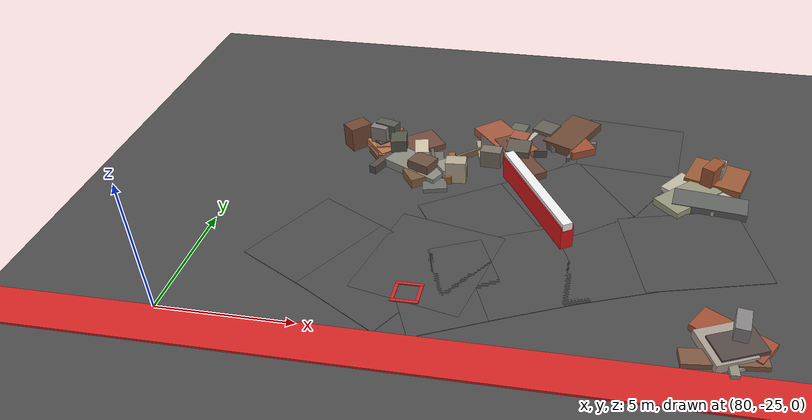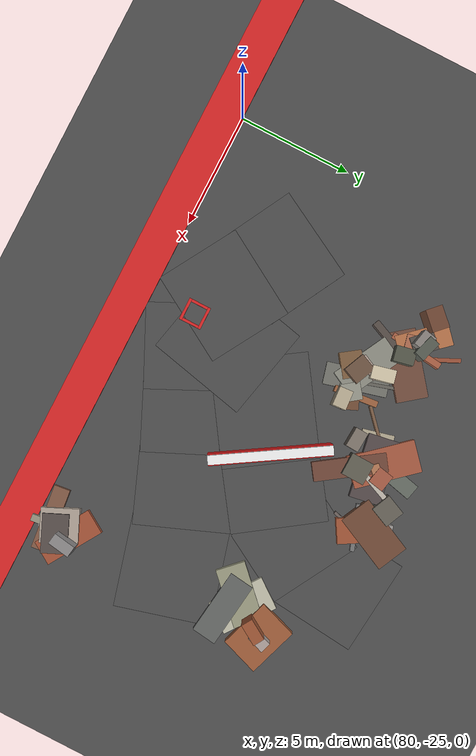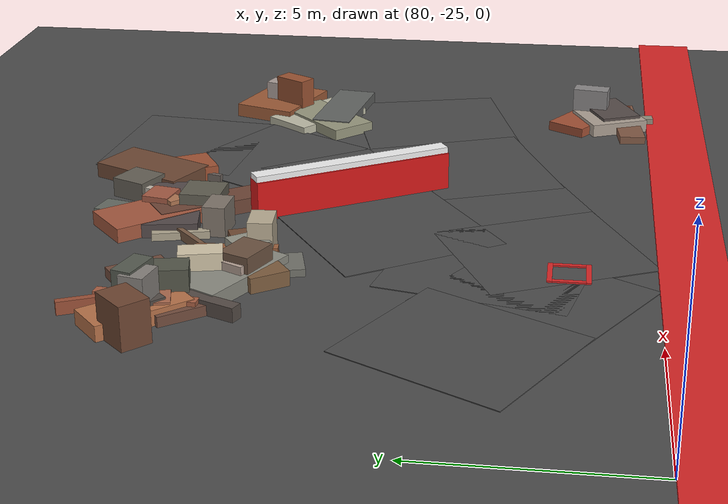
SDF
<sdf version="1.6">
 <world name="navitas_arena">
  <model name="ground_plane">
   <static>true</static>
   <link name="link">
    <collision name="collision">
     <geometry><plane><normal>0 0 1</normal><size>400 400</size></plane></geometry>
     <surface><friction><ode><mu>0.800</mu><mu2>0.800</mu2></ode></friction></surface>
    </collision>
    <visual name="visual">
     <cast_shadows>false</cast_shadows>
     <geometry><plane><normal>0 0 1</normal><size>400 400</size></plane></geometry>
     <material>
      <specular>0.04 0.04 0.04 1</specular>
      <script>
       <uri>file://media/materials/scripts/navitas_asphalt.material</uri>
       <name>Navitas/RealArenaAsphalt</name>
      </script>
     </material>
    </visual>
   </link>
  </model>
  <model name="brd_zor_S">
   <static>true</static>
   <pose>90.000 -25.800 0.040 0 0 0.000</pose>
   <link name="link">
    <collision name="col"><geometry><box><size>53.200 1.600 0.080</size></box></geometry></collision>
    <visual name="vis">
     <geometry><box><size>53.200 1.600 0.080</size></box></geometry>
     <material>
      <ambient>0.85 0.15 0.15 1</ambient>
      <diffuse>0.85 0.15 0.15 1</diffuse>
      <specular>0.04 0.04 0.04 1</specular>
     </material>
    </visual>
   </link>
  </model>
  <model name="road_zor_1_0">
   <static>true</static>
   <pose>87.048 -22.266 0.040 0 0 2.610</pose>
   <link name="link">
    <collision name="col"><geometry><box><size>3.796 4.200 0.020</size></box></geometry></collision>
    <visual name="vis">
     <geometry><box><size>3.796 4.200 0.020</size></box></geometry>
     <material>
      <specular>0.04 0.04 0.04 1</specular>
      <script>
       <uri>file://media/materials/scripts/navitas_asphalt.material</uri>
       <name>Navitas/RealArenaAsphalt</name>
      </script>
     </material>
    </visual>
   </link>
  </model>
  <model name="road_zor_1_1">
   <static>true</static>
   <pose>84.552 -20.856 0.040 0 0 2.646</pose>
   <link name="link">
    <collision name="col"><geometry><box><size>3.737 4.200 0.020</size></box></geometry></collision>
    <visual name="vis">
     <geometry><box><size>3.737 4.200 0.020</size></box></geometry>
     <material>
      <specular>0.04 0.04 0.04 1</specular>
      <script>
       <uri>file://media/materials/scripts/navitas_asphalt.material</uri>
       <name>Navitas/RealArenaAsphalt</name>
      </script>
     </material>
    </visual>
   </link>
  </model>
  <model name="road_zor_2_0">
   <static>true</static>
   <pose>88.680 -21.250 0.040 0 0 1.355</pose>
   <link name="link">
    <collision name="col"><geometry><box><size>4.483 4.200 0.020</size></box></geometry></collision>
    <visual name="vis">
     <geometry><box><size>4.483 4.200 0.020</size></box></geometry>
     <material>
      <specular>0.04 0.04 0.04 1</specular>
      <script>
       <uri>file://media/materials/scripts/navitas_asphalt.material</uri>
       <name>Navitas/RealArenaAsphalt</name>
      </script>
     </material>
    </visual>
   </link>
  </model>
  <model name="road_zor_2_1">
   <static>true</static>
   <pose>90.587 -18.484 0.040 0 0 0.588</pose>
   <link name="link">
    <collision name="col"><geometry><box><size>4.562 4.200 0.020</size></box></geometry></collision>
    <visual name="vis">
     <geometry><box><size>4.562 4.200 0.020</size></box></geometry>
     <material>
      <specular>0.04 0.04 0.04 1</specular>
      <script>
       <uri>file://media/materials/scripts/navitas_asphalt.material</uri>
       <name>Navitas/RealArenaAsphalt</name>
      </script>
     </material>
    </visual>
   </link>
  </model>
  <model name="road_zor_2_2">
   <static>true</static>
   <pose>93.232 -16.688 0.040 0 0 0.608</pose>
   <link name="link">
    <collision name="col"><geometry><box><size>3.633 4.200 0.020</size></box></geometry></collision>
    <visual name="vis">
     <geometry><box><size>3.633 4.200 0.020</size></box></geometry>
     <material>
      <specular>0.04 0.04 0.04 1</specular>
      <script>
       <uri>file://media/materials/scripts/navitas_asphalt.material</uri>
       <name>Navitas/RealArenaAsphalt</name>
      </script>
     </material>
    </visual>
   </link>
  </model>
  <model name="road_zor_2_3">
   <static>true</static>
   <pose>94.960 -14.833 0.040 0 0 1.056</pose>
   <link name="link">
    <collision name="col"><geometry><box><size>3.366 4.200 0.020</size></box></geometry></collision>
    <visual name="vis">
     <geometry><box><size>3.366 4.200 0.020</size></box></geometry>
     <material>
      <specular>0.04 0.04 0.04 1</specular>
      <script>
       <uri>file://media/materials/scripts/navitas_asphalt.material</uri>
       <name>Navitas/RealArenaAsphalt</name>
      </script>
     </material>
    </visual>
   </link>
  </model>
  <model name="road_zor_2_4">
   <static>true</static>
   <pose>95.709 -12.340 0.040 0 0 1.471</pose>
   <link name="link">
    <collision name="col"><geometry><box><size>3.754 4.200 0.020</size></box></geometry></collision>
    <visual name="vis">
     <geometry><box><size>3.754 4.200 0.020</size></box></geometry>
     <material>
      <specular>0.04 0.04 0.04 1</specular>
      <script>
       <uri>file://media/materials/scripts/navitas_asphalt.material</uri>
       <name>Navitas/RealArenaAsphalt</name>
      </script>
     </material>
    </visual>
   </link>
  </model>
  <model name="road_zor_3_0">
   <static>true</static>
   <pose>89.558 -22.399 0.040 0 0 0.445</pose>
   <link name="link">
    <collision name="col"><geometry><box><size>3.696 4.200 0.020</size></box></geometry></collision>
    <visual name="vis">
     <geometry><box><size>3.696 4.200 0.020</size></box></geometry>
     <material>
      <specular>0.04 0.04 0.04 1</specular>
      <script>
       <uri>file://media/materials/scripts/navitas_asphalt.material</uri>
       <name>Navitas/RealArenaAsphalt</name>
      </script>
     </material>
    </visual>
   </link>
  </model>
  <model name="road_zor_3_1">
   <static>true</static>
   <pose>92.056 -21.236 0.040 0 0 0.426</pose>
   <link name="link">
    <collision name="col"><geometry><box><size>3.615 4.200 0.020</size></box></geometry></collision>
    <visual name="vis">
     <geometry><box><size>3.615 4.200 0.020</size></box></geometry>
     <material>
      <specular>0.04 0.04 0.04 1</specular>
      <script>
       <uri>file://media/materials/scripts/navitas_asphalt.material</uri>
       <name>Navitas/RealArenaAsphalt</name>
      </script>
     </material>
    </visual>
   </link>
  </model>
  <model name="road_zor_3_2">
   <static>true</static>
   <pose>94.778 -20.087 0.040 0 0 0.377</pose>
   <link name="link">
    <collision name="col"><geometry><box><size>4.095 4.200 0.020</size></box></geometry></collision>
    <visual name="vis">
     <geometry><box><size>4.095 4.200 0.020</size></box></geometry>
     <material>
      <specular>0.04 0.04 0.04 1</specular>
      <script>
       <uri>file://media/materials/scripts/navitas_asphalt.material</uri>
       <name>Navitas/RealArenaAsphalt</name>
      </script>
     </material>
    </visual>
   </link>
  </model>
  <model name="road_zor_3_3">
   <static>true</static>
   <pose>98.083 -19.002 0.040 0 0 0.267</pose>
   <link name="link">
    <collision name="col"><geometry><box><size>4.675 4.200 0.020</size></box></geometry></collision>
    <visual name="vis">
     <geometry><box><size>4.675 4.200 0.020</size></box></geometry>
     <material>
      <specular>0.04 0.04 0.04 1</specular>
      <script>
       <uri>file://media/materials/scripts/navitas_asphalt.material</uri>
       <name>Navitas/RealArenaAsphalt</name>
      </script>
     </material>
    </visual>
   </link>
  </model>
  <model name="bar_zor_2">
   <static>true</static>
   <pose>92.110 -17.469 0.500 0 0 2.126</pose>
   <link name="link">
    <collision name="col"><geometry><box><size>5.200 0.500 1.000</size></box></geometry></collision>
    <visual name="vis">
     <geometry><box><size>5.200 0.500 1.000</size></box></geometry>
     <material>
      <ambient>0.85 0.10 0.10 1</ambient>
      <diffuse>0.85 0.10 0.10 1</diffuse>
      <specular>0.04 0.04 0.04 1</specular>
     </material>
    </visual>
   </link>
  </model>
  <model name="bar_zor_2b">
   <static>true</static>
   <pose>92.110 -17.469 1.000 0 0 2.126</pose>
   <link name="link">
    <collision name="col"><geometry><box><size>5.200 0.400 0.300</size></box></geometry></collision>
    <visual name="vis">
     <geometry><box><size>5.200 0.400 0.300</size></box></geometry>
     <material>
      <ambient>0.95 0.95 0.95 1</ambient>
      <diffuse>0.95 0.95 0.95 1</diffuse>
      <specular>0.04 0.04 0.04 1</specular>
     </material>
    </visual>
   </link>
  </model>
  <model name="deb_zor_12">
   <static>true</static>
   <pose>98.568 -15.373 0.000 0 0 0</pose>
   <link name="link">
    <collision name="col_0">
     <pose>0.626 1.024 0.184 0.000 0.000 -0.329</pose>
     <geometry><box><size>2.276 1.734 0.368</size></box></geometry>
    </collision>
    <visual name="vis_0">
     <pose>0.626 1.024 0.184 0.000 0.000 -0.329</pose>
     <geometry><box><size>2.276 1.734 0.368</size></box></geometry>
     <material>
      <ambient>0.57 0.34 0.21 1</ambient>
      <diffuse>0.62 0.36 0.22 1</diffuse>
      <specular>0.05 0.05 0.045 1</specular>
     </material>
    </visual>
    <collision name="col_1">
     <pose>0.236 -0.877 0.158 0.000 0.000 -0.127</pose>
     <geometry><box><size>2.851 1.086 0.316</size></box></geometry>
    </collision>
    <visual name="vis_1">
     <pose>0.236 -0.877 0.158 0.000 0.000 -0.127</pose>
     <geometry><box><size>2.851 1.086 0.316</size></box></geometry>
     <material>
      <ambient>0.36 0.37 0.36 1</ambient>
      <diffuse>0.39 0.40 0.39 1</diffuse>
      <specular>0.05 0.05 0.045 1</specular>
     </material>
    </visual>
    <collision name="col_2">
     <pose>-0.225 -0.174 0.114 0.000 0.000 -0.642</pose>
     <geometry><box><size>2.468 1.442 0.228</size></box></geometry>
    </collision>
    <visual name="vis_2">
     <pose>-0.225 -0.174 0.114 0.000 0.000 -0.642</pose>
     <geometry><box><size>2.468 1.442 0.228</size></box></geometry>
     <material>
      <ambient>0.69 0.69 0.61 1</ambient>
      <diffuse>0.75 0.74 0.66 1</diffuse>
      <specular>0.05 0.05 0.045 1</specular>
     </material>
    </visual>
    <collision name="col_3">
     <pose>0.608 1.024 0.429 0.000 0.000 1.241</pose>
     <geometry><box><size>0.772 0.487 0.859</size></box></geometry>
    </collision>
    <visual name="vis_3">
     <pose>0.608 1.024 0.429 0.000 0.000 1.241</pose>
     <geometry><box><size>0.772 0.487 0.859</size></box></geometry>
     <material>
      <ambient>0.62 0.58 0.56 1</ambient>
      <diffuse>0.67 0.62 0.60 1</diffuse>
      <specular>0.05 0.05 0.045 1</specular>
     </material>
    </visual>
    <collision name="col_4">
     <pose>-0.587 -0.517 0.145 0.000 0.000 0.783</pose>
     <geometry><box><size>2.545 1.279 0.290</size></box></geometry>
    </collision>
    <visual name="vis_4">
     <pose>-0.587 -0.517 0.145 0.000 0.000 0.783</pose>
     <geometry><box><size>2.545 1.279 0.290</size></box></geometry>
     <material>
      <ambient>0.55 0.55 0.46 1</ambient>
      <diffuse>0.60 0.60 0.50 1</diffuse>
      <specular>0.05 0.05 0.045 1</specular>
     </material>
    </visual>
    <collision name="col_5">
     <pose>0.340 0.587 0.542 0.000 0.000 1.023</pose>
     <geometry><box><size>0.962 0.507 1.084</size></box></geometry>
    </collision>
    <visual name="vis_5">
     <pose>0.340 0.587 0.542 0.000 0.000 1.023</pose>
     <geometry><box><size>0.962 0.507 1.084</size></box></geometry>
     <material>
      <ambient>0.57 0.30 0.18 1</ambient>
      <diffuse>0.61 0.33 0.20 1</diffuse>
      <specular>0.05 0.05 0.045 1</specular>
     </material>
    </visual>
   </link>
  </model>
  <model name="deb_zor_71">
   <static>true</static>
   <pose>85.255 -14.508 0.000 0 0 0</pose>
   <link name="link">
    <collision name="col_0">
     <pose>-0.037 0.441 0.211 0.000 0.000 1.799</pose>
     <geometry><box><size>1.031 0.738 0.423</size></box></geometry>
    </collision>
    <visual name="vis_0">
     <pose>-0.037 0.441 0.211 0.000 0.000 1.799</pose>
     <geometry><box><size>1.031 0.738 0.423</size></box></geometry>
     <material>
      <ambient>0.63 0.39 0.29 1</ambient>
      <diffuse>0.68 0.42 0.31 1</diffuse>
      <specular>0.05 0.05 0.045 1</specular>
     </material>
    </visual>
    <collision name="col_1">
     <pose>-0.222 0.652 0.236 0.000 0.000 -0.770</pose>
     <geometry><box><size>1.046 0.837 0.473</size></box></geometry>
    </collision>
    <visual name="vis_1">
     <pose>-0.222 0.652 0.236 0.000 0.000 -0.770</pose>
     <geometry><box><size>1.046 0.837 0.473</size></box></geometry>
     <material>
      <ambient>0.30 0.28 0.26 1</ambient>
      <diffuse>0.33 0.30 0.28 1</diffuse>
      <specular>0.05 0.05 0.045 1</specular>
     </material>
    </visual>
    <collision name="col_2">
     <pose>0.179 0.524 0.175 0.000 0.000 1.456</pose>
     <geometry><box><size>2.364 0.275 0.351</size></box></geometry>
    </collision>
    <visual name="vis_2">
     <pose>0.179 0.524 0.175 0.000 0.000 1.456</pose>
     <geometry><box><size>2.364 0.275 0.351</size></box></geometry>
     <material>
      <ambient>0.62 0.35 0.25 1</ambient>
      <diffuse>0.67 0.38 0.27 1</diffuse>
      <specular>0.05 0.05 0.045 1</specular>
     </material>
    </visual>
    <collision name="col_3">
     <pose>0.315 -0.551 0.171 0.000 0.000 1.163</pose>
     <geometry><box><size>2.131 0.307 0.341</size></box></geometry>
    </collision>
    <visual name="vis_3">
     <pose>0.315 -0.551 0.171 0.000 0.000 1.163</pose>
     <geometry><box><size>2.131 0.307 0.341</size></box></geometry>
     <material>
      <ambient>0.31 0.28 0.26 1</ambient>
      <diffuse>0.34 0.30 0.28 1</diffuse>
      <specular>0.05 0.05 0.045 1</specular>
     </material>
    </visual>
    <collision name="col_4">
     <pose>-0.224 0.538 0.546 0.000 0.000 1.362</pose>
     <geometry><box><size>0.583 0.727 1.093</size></box></geometry>
    </collision>
    <visual name="vis_4">
     <pose>-0.224 0.538 0.546 0.000 0.000 1.362</pose>
     <geometry><box><size>0.583 0.727 1.093</size></box></geometry>
     <material>
      <ambient>0.49 0.47 0.46 1</ambient>
      <diffuse>0.53 0.51 0.49 1</diffuse>
      <specular>0.05 0.05 0.045 1</specular>
     </material>
    </visual>
    <collision name="col_5">
     <pose>0.327 -0.537 0.081 0.000 0.000 1.615</pose>
     <geometry><box><size>0.370 0.418 0.163</size></box></geometry>
    </collision>
    <visual name="vis_5">
     <pose>0.327 -0.537 0.081 0.000 0.000 1.615</pose>
     <geometry><box><size>0.370 0.418 0.163</size></box></geometry>
     <material>
      <ambient>0.62 0.36 0.25 1</ambient>
      <diffuse>0.67 0.39 0.27 1</diffuse>
      <specular>0.05 0.05 0.045 1</specular>
     </material>
    </visual>
    <collision name="col_6">
     <pose>0.657 0.108 0.436 0.000 0.000 1.776</pose>
     <geometry><box><size>0.868 0.666 0.872</size></box></geometry>
    </collision>
    <visual name="vis_6">
     <pose>0.657 0.108 0.436 0.000 0.000 1.776</pose>
     <geometry><box><size>0.868 0.666 0.872</size></box></geometry>
     <material>
      <ambient>0.31 0.32 0.27 1</ambient>
      <diffuse>0.33 0.34 0.29 1</diffuse>
      <specular>0.05 0.05 0.045 1</specular>
     </material>
    </visual>
   </link>
  </model>
  <model name="deb_zor_87">
   <static>true</static>
   <pose>88.784 -15.425 0.000 0 0 0</pose>
   <link name="link">
    <collision name="col_0">
     <pose>-0.127 -0.458 0.467 0.000 0.000 1.639</pose>
     <geometry><box><size>0.591 0.826 0.935</size></box></geometry>
    </collision>
    <visual name="vis_0">
     <pose>-0.127 -0.458 0.467 0.000 0.000 1.639</pose>
     <geometry><box><size>0.591 0.826 0.935</size></box></geometry>
     <material>
      <ambient>0.68 0.63 0.54 1</ambient>
      <diffuse>0.73 0.68 0.58 1</diffuse>
      <specular>0.05 0.05 0.045 1</specular>
     </material>
    </visual>
    <collision name="col_1">
     <pose>-0.186 -0.069 0.251 0.000 0.000 1.971</pose>
     <geometry><box><size>0.703 0.725 0.501</size></box></geometry>
    </collision>
    <visual name="vis_1">
     <pose>-0.186 -0.069 0.251 0.000 0.000 1.971</pose>
     <geometry><box><size>0.703 0.725 0.501</size></box></geometry>
     <material>
      <ambient>0.42 0.28 0.19 1</ambient>
      <diffuse>0.45 0.30 0.21 1</diffuse>
      <specular>0.05 0.05 0.045 1</specular>
     </material>
    </visual>
    <collision name="col_2">
     <pose>-0.488 0.070 0.162 0.000 0.000 1.670</pose>
     <geometry><box><size>1.917 0.275 0.324</size></box></geometry>
    </collision>
    <visual name="vis_2">
     <pose>-0.488 0.070 0.162 0.000 0.000 1.670</pose>
     <geometry><box><size>1.917 0.275 0.324</size></box></geometry>
     <material>
      <ambient>0.58 0.36 0.24 1</ambient>
      <diffuse>0.62 0.39 0.25 1</diffuse>
      <specular>0.05 0.05 0.045 1</specular>
     </material>
    </visual>
    <collision name="col_3">
     <pose>-0.548 -0.210 0.265 0.000 0.000 3.785</pose>
     <geometry><box><size>0.765 0.830 0.530</size></box></geometry>
    </collision>
    <visual name="vis_3">
     <pose>-0.548 -0.210 0.265 0.000 0.000 3.785</pose>
     <geometry><box><size>0.765 0.830 0.530</size></box></geometry>
     <material>
      <ambient>0.55 0.55 0.50 1</ambient>
      <diffuse>0.59 0.59 0.54 1</diffuse>
      <specular>0.05 0.05 0.045 1</specular>
     </material>
    </visual>
   </link>
  </model>
  <model name="deb_zor_96">
   <static>true</static>
   <pose>90.060 -13.843 0.000 0 0 0</pose>
   <link name="link">
    <collision name="col_0">
     <pose>0.652 0.672 0.240 0.000 0.000 0.806</pose>
     <geometry><box><size>0.602 0.390 0.479</size></box></geometry>
    </collision>
    <visual name="vis_0">
     <pose>0.652 0.672 0.240 0.000 0.000 0.806</pose>
     <geometry><box><size>0.602 0.390 0.479</size></box></geometry>
     <material>
      <ambient>0.64 0.43 0.31 1</ambient>
      <diffuse>0.70 0.47 0.33 1</diffuse>
      <specular>0.05 0.05 0.045 1</specular>
     </material>
    </visual>
    <collision name="col_1">
     <pose>1.002 -0.382 0.185 0.000 0.000 2.176</pose>
     <geometry><box><size>3.169 0.830 0.369</size></box></geometry>
    </collision>
    <visual name="vis_1">
     <pose>1.002 -0.382 0.185 0.000 0.000 2.176</pose>
     <geometry><box><size>3.169 0.830 0.369</size></box></geometry>
     <material>
      <ambient>0.41 0.26 0.20 1</ambient>
      <diffuse>0.44 0.28 0.22 1</diffuse>
      <specular>0.05 0.05 0.045 1</specular>
     </material>
    </visual>
    <collision name="col_2">
     <pose>-0.151 -0.707 0.373 0.000 0.000 1.511</pose>
     <geometry><box><size>0.557 0.863 0.747</size></box></geometry>
    </collision>
    <visual name="vis_2">
     <pose>-0.151 -0.707 0.373 0.000 0.000 1.511</pose>
     <geometry><box><size>0.557 0.863 0.747</size></box></geometry>
     <material>
      <ambient>0.46 0.43 0.39 1</ambient>
      <diffuse>0.50 0.46 0.42 1</diffuse>
      <specular>0.05 0.05 0.045 1</specular>
     </material>
    </visual>
    <collision name="col_3">
     <pose>-0.804 0.035 0.126 0.000 0.000 0.739</pose>
     <geometry><box><size>2.376 0.127 0.251</size></box></geometry>
    </collision>
    <visual name="vis_3">
     <pose>-0.804 0.035 0.126 0.000 0.000 0.739</pose>
     <geometry><box><size>2.376 0.127 0.251</size></box></geometry>
     <material>
      <ambient>0.45 0.33 0.25 1</ambient>
      <diffuse>0.48 0.36 0.27 1</diffuse>
      <specular>0.05 0.05 0.045 1</specular>
     </material>
    </visual>
    <collision name="col_4">
     <pose>-0.748 0.087 0.094 0.000 0.000 1.814</pose>
     <geometry><box><size>1.382 0.240 0.189</size></box></geometry>
    </collision>
    <visual name="vis_4">
     <pose>-0.748 0.087 0.094 0.000 0.000 1.814</pose>
     <geometry><box><size>1.382 0.240 0.189</size></box></geometry>
     <material>
      <ambient>0.64 0.60 0.52 1</ambient>
      <diffuse>0.69 0.65 0.56 1</diffuse>
      <specular>0.05 0.05 0.045 1</specular>
     </material>
    </visual>
    <collision name="col_5">
     <pose>0.918 -0.101 0.320 0.000 0.000 1.542</pose>
     <geometry><box><size>1.003 0.974 0.640</size></box></geometry>
    </collision>
    <visual name="vis_5">
     <pose>0.918 -0.101 0.320 0.000 0.000 1.542</pose>
     <geometry><box><size>1.003 0.974 0.640</size></box></geometry>
     <material>
      <ambient>0.35 0.34 0.30 1</ambient>
      <diffuse>0.38 0.37 0.32 1</diffuse>
      <specular>0.05 0.05 0.045 1</specular>
     </material>
    </visual>
   </link>
  </model>
  <model name="deb_zor_100">
   <static>true</static>
   <pose>84.560 -12.936 0.000 0 0 0</pose>
   <link name="link">
    <collision name="col_0">
     <pose>0.721 -0.844 0.572 0.000 0.000 -0.291</pose>
     <geometry><box><size>0.930 0.478 1.145</size></box></geometry>
    </collision>
    <visual name="vis_0">
     <pose>0.721 -0.844 0.572 0.000 0.000 -0.291</pose>
     <geometry><box><size>0.930 0.478 1.145</size></box></geometry>
     <material>
      <ambient>0.32 0.33 0.30 1</ambient>
      <diffuse>0.34 0.36 0.32 1</diffuse>
      <specular>0.05 0.05 0.045 1</specular>
     </material>
    </visual>
    <collision name="col_1">
     <pose>0.688 0.175 0.156 0.000 0.000 -1.136</pose>
     <geometry><box><size>1.415 0.174 0.313</size></box></geometry>
    </collision>
    <visual name="vis_1">
     <pose>0.688 0.175 0.156 0.000 0.000 -1.136</pose>
     <geometry><box><size>1.415 0.174 0.313</size></box></geometry>
     <material>
      <ambient>0.56 0.30 0.21 1</ambient>
      <diffuse>0.61 0.32 0.22 1</diffuse>
      <specular>0.05 0.05 0.045 1</specular>
     </material>
    </visual>
    <collision name="col_2">
     <pose>-0.583 -1.003 0.514 0.000 0.000 0.800</pose>
     <geometry><box><size>0.966 0.729 1.028</size></box></geometry>
    </collision>
    <visual name="vis_2">
     <pose>-0.583 -1.003 0.514 0.000 0.000 0.800</pose>
     <geometry><box><size>0.966 0.729 1.028</size></box></geometry>
     <material>
      <ambient>0.41 0.26 0.18 1</ambient>
      <diffuse>0.44 0.28 0.20 1</diffuse>
      <specular>0.05 0.05 0.045 1</specular>
     </material>
    </visual>
    <collision name="col_3">
     <pose>0.351 -0.959 0.184 0.000 0.000 -0.837</pose>
     <geometry><box><size>2.323 1.004 0.368</size></box></geometry>
    </collision>
    <visual name="vis_3">
     <pose>0.351 -0.959 0.184 0.000 0.000 -0.837</pose>
     <geometry><box><size>2.323 1.004 0.368</size></box></geometry>
     <material>
      <ambient>0.66 0.41 0.27 1</ambient>
      <diffuse>0.72 0.45 0.29 1</diffuse>
      <specular>0.05 0.05 0.045 1</specular>
     </material>
    </visual>
   </link>
  </model>
  <model name="deb_zor_139">
   <static>true</static>
   <pose>87.856 -15.324 0.000 0 0 0</pose>
   <link name="link">
    <collision name="col_0">
     <pose>-0.676 -0.799 0.185 0.000 0.000 0.618</pose>
     <geometry><box><size>1.128 0.954 0.370</size></box></geometry>
    </collision>
    <visual name="vis_0">
     <pose>-0.676 -0.799 0.185 0.000 0.000 0.618</pose>
     <geometry><box><size>1.128 0.954 0.370</size></box></geometry>
     <material>
      <ambient>0.46 0.35 0.23 1</ambient>
      <diffuse>0.50 0.37 0.25 1</diffuse>
      <specular>0.05 0.05 0.045 1</specular>
     </material>
    </visual>
    <collision name="col_1">
     <pose>-0.602 -0.471 0.382 0.000 0.000 -0.409</pose>
     <geometry><box><size>0.974 0.786 0.764</size></box></geometry>
    </collision>
    <visual name="vis_1">
     <pose>-0.602 -0.471 0.382 0.000 0.000 -0.409</pose>
     <geometry><box><size>0.974 0.786 0.764</size></box></geometry>
     <material>
      <ambient>0.40 0.30 0.24 1</ambient>
      <diffuse>0.43 0.33 0.26 1</diffuse>
      <specular>0.05 0.05 0.045 1</specular>
     </material>
    </visual>
    <collision name="col_2">
     <pose>-0.888 -0.177 0.185 0.000 0.000 -0.482</pose>
     <geometry><box><size>2.614 1.215 0.370</size></box></geometry>
    </collision>
    <visual name="vis_2">
     <pose>-0.888 -0.177 0.185 0.000 0.000 -0.482</pose>
     <geometry><box><size>2.614 1.215 0.370</size></box></geometry>
     <material>
      <ambient>0.51 0.51 0.47 1</ambient>
      <diffuse>0.55 0.55 0.51 1</diffuse>
      <specular>0.05 0.05 0.045 1</specular>
     </material>
    </visual>
    <collision name="col_3">
     <pose>-0.211 -0.316 0.090 0.000 0.000 1.825</pose>
     <geometry><box><size>2.759 0.963 0.180</size></box></geometry>
    </collision>
    <visual name="vis_3">
     <pose>-0.211 -0.316 0.090 0.000 0.000 1.825</pose>
     <geometry><box><size>2.759 0.963 0.180</size></box></geometry>
     <material>
      <ambient>0.42 0.42 0.39 1</ambient>
      <diffuse>0.45 0.45 0.42 1</diffuse>
      <specular>0.05 0.05 0.045 1</specular>
     </material>
    </visual>
    <collision name="col_4">
     <pose>-0.443 0.734 0.103 0.000 0.000 1.869</pose>
     <geometry><box><size>1.630 0.139 0.206</size></box></geometry>
    </collision>
    <visual name="vis_4">
     <pose>-0.443 0.734 0.103 0.000 0.000 1.869</pose>
     <geometry><box><size>1.630 0.139 0.206</size></box></geometry>
     <material>
      <ambient>0.37 0.36 0.33 1</ambient>
      <diffuse>0.40 0.39 0.36 1</diffuse>
      <specular>0.05 0.05 0.045 1</specular>
     </material>
    </visual>
    <collision name="col_5">
     <pose>0.207 -0.670 0.110 0.000 0.000 -0.232</pose>
     <geometry><box><size>0.339 0.345 0.220</size></box></geometry>
    </collision>
    <visual name="vis_5">
     <pose>0.207 -0.670 0.110 0.000 0.000 -0.232</pose>
     <geometry><box><size>0.339 0.345 0.220</size></box></geometry>
     <material>
      <ambient>0.45 0.48 0.44 1</ambient>
      <diffuse>0.49 0.52 0.47 1</diffuse>
      <specular>0.05 0.05 0.045 1</specular>
     </material>
    </visual>
    <collision name="col_6">
     <pose>-0.865 -0.100 0.287 0.000 0.000 1.098</pose>
     <geometry><box><size>1.083 0.365 0.573</size></box></geometry>
    </collision>
    <visual name="vis_6">
     <pose>-0.865 -0.100 0.287 0.000 0.000 1.098</pose>
     <geometry><box><size>1.083 0.365 0.573</size></box></geometry>
     <material>
      <ambient>0.67 0.59 0.55 1</ambient>
      <diffuse>0.72 0.64 0.59 1</diffuse>
      <specular>0.05 0.05 0.045 1</specular>
     </material>
    </visual>
   </link>
  </model>
  <model name="deb_zor_235">
   <static>true</static>
   <pose>92.445 -12.457 0.000 0 0 0</pose>
   <link name="link">
    <collision name="col_0">
     <pose>0.669 0.412 0.199 0.000 0.000 1.127</pose>
     <geometry><box><size>2.592 1.430 0.398</size></box></geometry>
    </collision>
    <visual name="vis_0">
     <pose>0.669 0.412 0.199 0.000 0.000 1.127</pose>
     <geometry><box><size>2.592 1.430 0.398</size></box></geometry>
     <material>
      <ambient>0.40 0.26 0.20 1</ambient>
      <diffuse>0.44 0.29 0.21 1</diffuse>
      <specular>0.05 0.05 0.045 1</specular>
     </material>
    </visual>
    <collision name="col_1">
     <pose>0.295 0.468 0.150 0.000 0.000 1.895</pose>
     <geometry><box><size>1.199 0.274 0.300</size></box></geometry>
    </collision>
    <visual name="vis_1">
     <pose>0.295 0.468 0.150 0.000 0.000 1.895</pose>
     <geometry><box><size>1.199 0.274 0.300</size></box></geometry>
     <material>
      <ambient>0.57 0.54 0.54 1</ambient>
      <diffuse>0.61 0.59 0.58 1</diffuse>
      <specular>0.05 0.05 0.045 1</specular>
     </material>
    </visual>
    <collision name="col_2">
     <pose>0.888 -0.380 0.190 0.000 0.000 2.103</pose>
     <geometry><box><size>1.519 1.087 0.381</size></box></geometry>
    </collision>
    <visual name="vis_2">
     <pose>0.888 -0.380 0.190 0.000 0.000 2.103</pose>
     <geometry><box><size>1.519 1.087 0.381</size></box></geometry>
     <material>
      <ambient>0.59 0.31 0.20 1</ambient>
      <diffuse>0.63 0.33 0.21 1</diffuse>
      <specular>0.05 0.05 0.045 1</specular>
     </material>
    </visual>
    <collision name="col_3">
     <pose>-0.472 0.460 0.251 0.000 0.000 1.150</pose>
     <geometry><box><size>0.935 0.904 0.502</size></box></geometry>
    </collision>
    <visual name="vis_3">
     <pose>-0.472 0.460 0.251 0.000 0.000 1.150</pose>
     <geometry><box><size>0.935 0.904 0.502</size></box></geometry>
     <material>
      <ambient>0.37 0.35 0.31 1</ambient>
      <diffuse>0.40 0.38 0.34 1</diffuse>
      <specular>0.05 0.05 0.045 1</specular>
     </material>
    </visual>
    <collision name="col_4">
     <pose>0.891 -0.424 0.099 0.000 0.000 1.300</pose>
     <geometry><box><size>2.081 0.131 0.197</size></box></geometry>
    </collision>
    <visual name="vis_4">
     <pose>0.891 -0.424 0.099 0.000 0.000 1.300</pose>
     <geometry><box><size>2.081 0.131 0.197</size></box></geometry>
     <material>
      <ambient>0.39 0.35 0.33 1</ambient>
      <diffuse>0.42 0.38 0.36 1</diffuse>
      <specular>0.05 0.05 0.045 1</specular>
     </material>
    </visual>
    <collision name="col_5">
     <pose>0.788 -0.371 0.116 0.000 0.000 0.332</pose>
     <geometry><box><size>2.013 0.187 0.232</size></box></geometry>
    </collision>
    <visual name="vis_5">
     <pose>0.788 -0.371 0.116 0.000 0.000 0.332</pose>
     <geometry><box><size>2.013 0.187 0.232</size></box></geometry>
     <material>
      <ambient>0.42 0.42 0.42 1</ambient>
      <diffuse>0.45 0.45 0.45 1</diffuse>
      <specular>0.05 0.05 0.045 1</specular>
     </material>
    </visual>
   </link>
  </model>
  <model name="deb_zor_376">
   <static>true</static>
   <pose>86.400 -14.646 0.000 0 0 0</pose>
   <link name="link">
    <collision name="col_0">
     <pose>0.122 -0.596 0.145 0.000 0.000 0.193</pose>
     <geometry><box><size>1.575 0.135 0.290</size></box></geometry>
    </collision>
    <visual name="vis_0">
     <pose>0.122 -0.596 0.145 0.000 0.000 0.193</pose>
     <geometry><box><size>1.575 0.135 0.290</size></box></geometry>
     <material>
      <ambient>0.63 0.57 0.57 1</ambient>
      <diffuse>0.69 0.62 0.62 1</diffuse>
      <specular>0.05 0.05 0.045 1</specular>
     </material>
    </visual>
    <collision name="col_1">
     <pose>0.599 -0.174 0.389 0.000 0.000 1.802</pose>
     <geometry><box><size>1.006 0.568 0.778</size></box></geometry>
    </collision>
    <visual name="vis_1">
     <pose>0.599 -0.174 0.389 0.000 0.000 1.802</pose>
     <geometry><box><size>1.006 0.568 0.778</size></box></geometry>
     <material>
      <ambient>0.77 0.72 0.62 1</ambient>
      <diffuse>0.83 0.78 0.67 1</diffuse>
      <specular>0.05 0.05 0.045 1</specular>
     </material>
    </visual>
    <collision name="col_2">
     <pose>0.127 -0.054 0.062 0.000 0.000 2.078</pose>
     <geometry><box><size>0.354 0.412 0.123</size></box></geometry>
    </collision>
    <visual name="vis_2">
     <pose>0.127 -0.054 0.062 0.000 0.000 2.078</pose>
     <geometry><box><size>0.354 0.412 0.123</size></box></geometry>
     <material>
      <ambient>0.41 0.27 0.22 1</ambient>
      <diffuse>0.44 0.30 0.23 1</diffuse>
      <specular>0.05 0.05 0.045 1</specular>
     </material>
    </visual>
    <collision name="col_3">
     <pose>-0.230 0.576 0.123 0.000 0.000 0.664</pose>
     <geometry><box><size>2.982 1.354 0.246</size></box></geometry>
    </collision>
    <visual name="vis_3">
     <pose>-0.230 0.576 0.123 0.000 0.000 0.664</pose>
     <geometry><box><size>2.982 1.354 0.246</size></box></geometry>
     <material>
      <ambient>0.41 0.28 0.22 1</ambient>
      <diffuse>0.45 0.30 0.24 1</diffuse>
      <specular>0.05 0.05 0.045 1</specular>
     </material>
    </visual>
   </link>
  </model>
  <model name="deb_zor_384">
   <static>true</static>
   <pose>99.088 -23.975 0.000 0 0 0</pose>
   <link name="link">
    <collision name="col_0">
     <pose>0.133 0.013 0.208 0.000 0.000 3.557</pose>
     <geometry><box><size>1.676 1.127 0.417</size></box></geometry>
    </collision>
    <visual name="vis_0">
     <pose>0.133 0.013 0.208 0.000 0.000 3.557</pose>
     <geometry><box><size>1.676 1.127 0.417</size></box></geometry>
     <material>
      <ambient>0.31 0.28 0.27 1</ambient>
      <diffuse>0.34 0.30 0.29 1</diffuse>
      <specular>0.05 0.05 0.045 1</specular>
     </material>
    </visual>
    <collision name="col_1">
     <pose>-0.065 -0.500 0.117 0.000 0.000 1.673</pose>
     <geometry><box><size>1.425 0.303 0.235</size></box></geometry>
    </collision>
    <visual name="vis_1">
     <pose>-0.065 -0.500 0.117 0.000 0.000 1.673</pose>
     <geometry><box><size>1.425 0.303 0.235</size></box></geometry>
     <material>
      <ambient>0.55 0.53 0.46 1</ambient>
      <diffuse>0.59 0.57 0.50 1</diffuse>
      <specular>0.05 0.05 0.045 1</specular>
     </material>
    </visual>
    <collision name="col_2">
     <pose>0.273 0.556 0.480 0.000 0.000 2.988</pose>
     <geometry><box><size>0.490 0.974 0.961</size></box></geometry>
    </collision>
    <visual name="vis_2">
     <pose>0.273 0.556 0.480 0.000 0.000 2.988</pose>
     <geometry><box><size>0.490 0.974 0.961</size></box></geometry>
     <material>
      <ambient>0.50 0.49 0.49 1</ambient>
      <diffuse>0.54 0.53 0.53 1</diffuse>
      <specular>0.05 0.05 0.045 1</specular>
     </material>
    </visual>
    <collision name="col_3">
     <pose>-0.287 -0.462 0.099 0.000 0.000 3.254</pose>
     <geometry><box><size>2.798 0.698 0.199</size></box></geometry>
    </collision>
    <visual name="vis_3">
     <pose>-0.287 -0.462 0.099 0.000 0.000 3.254</pose>
     <geometry><box><size>2.798 0.698 0.199</size></box></geometry>
     <material>
      <ambient>0.47 0.33 0.25 1</ambient>
      <diffuse>0.51 0.35 0.27 1</diffuse>
      <specular>0.05 0.05 0.045 1</specular>
     </material>
    </visual>
    <collision name="col_4">
     <pose>-0.225 0.025 0.170 0.000 0.000 1.991</pose>
     <geometry><box><size>1.641 1.499 0.340</size></box></geometry>
    </collision>
    <visual name="vis_4">
     <pose>-0.225 0.025 0.170 0.000 0.000 1.991</pose>
     <geometry><box><size>1.641 1.499 0.340</size></box></geometry>
     <material>
      <ambient>0.63 0.58 0.53 1</ambient>
      <diffuse>0.68 0.63 0.58 1</diffuse>
      <specular>0.05 0.05 0.045 1</specular>
     </material>
    </visual>
    <collision name="col_5">
     <pose>0.184 -0.573 0.064 0.000 0.000 2.072</pose>
     <geometry><box><size>0.469 0.370 0.127</size></box></geometry>
    </collision>
    <visual name="vis_5">
     <pose>0.184 -0.573 0.064 0.000 0.000 2.072</pose>
     <geometry><box><size>0.469 0.370 0.127</size></box></geometry>
     <material>
      <ambient>0.62 0.58 0.57 1</ambient>
      <diffuse>0.67 0.63 0.62 1</diffuse>
      <specular>0.05 0.05 0.045 1</specular>
     </material>
    </visual>
    <collision name="col_6">
     <pose>0.061 0.564 0.125 0.000 0.000 2.584</pose>
     <geometry><box><size>2.620 1.106 0.250</size></box></geometry>
    </collision>
    <visual name="vis_6">
     <pose>0.061 0.564 0.125 0.000 0.000 2.584</pose>
     <geometry><box><size>2.620 1.106 0.250</size></box></geometry>
     <material>
      <ambient>0.59 0.30 0.19 1</ambient>
      <diffuse>0.64 0.32 0.21 1</diffuse>
      <specular>0.05 0.05 0.045 1</specular>
     </material>
    </visual>
   </link>
  </model>
  <model name="deb_zor_393">
   <static>true</static>
   <pose>90.293 -12.512 0.000 0 0 0</pose>
   <link name="link">
    <collision name="col_0">
     <pose>0.002 -0.480 0.178 0.000 0.000 2.292</pose>
     <geometry><box><size>2.932 1.398 0.356</size></box></geometry>
    </collision>
    <visual name="vis_0">
     <pose>0.002 -0.480 0.178 0.000 0.000 2.292</pose>
     <geometry><box><size>2.932 1.398 0.356</size></box></geometry>
     <material>
      <ambient>0.60 0.32 0.23 1</ambient>
      <diffuse>0.65 0.35 0.25 1</diffuse>
      <specular>0.05 0.05 0.045 1</specular>
     </material>
    </visual>
    <collision name="col_1">
     <pose>0.371 0.500 0.083 0.000 0.000 1.342</pose>
     <geometry><box><size>1.401 0.692 0.166</size></box></geometry>
    </collision>
    <visual name="vis_1">
     <pose>0.371 0.500 0.083 0.000 0.000 1.342</pose>
     <geometry><box><size>1.401 0.692 0.166</size></box></geometry>
     <material>
      <ambient>0.37 0.39 0.36 1</ambient>
      <diffuse>0.40 0.42 0.39 1</diffuse>
      <specular>0.05 0.05 0.045 1</specular>
     </material>
    </visual>
    <collision name="col_2">
     <pose>0.567 -0.683 0.119 0.000 0.000 -0.180</pose>
     <geometry><box><size>1.518 0.269 0.237</size></box></geometry>
    </collision>
    <visual name="vis_2">
     <pose>0.567 -0.683 0.119 0.000 0.000 -0.180</pose>
     <geometry><box><size>1.518 0.269 0.237</size></box></geometry>
     <material>
      <ambient>0.29 0.29 0.26 1</ambient>
      <diffuse>0.31 0.31 0.28 1</diffuse>
      <specular>0.05 0.05 0.045 1</specular>
     </material>
    </visual>
    <collision name="col_3">
     <pose>1.051 -0.334 0.189 0.000 0.000 1.171</pose>
     <geometry><box><size>2.161 0.215 0.378</size></box></geometry>
    </collision>
    <visual name="vis_3">
     <pose>1.051 -0.334 0.189 0.000 0.000 1.171</pose>
     <geometry><box><size>2.161 0.215 0.378</size></box></geometry>
     <material>
      <ambient>0.69 0.67 0.62 1</ambient>
      <diffuse>0.75 0.72 0.67 1</diffuse>
      <specular>0.05 0.05 0.045 1</specular>
     </material>
    </visual>
    <collision name="col_4">
     <pose>0.620 -0.354 0.254 0.000 0.000 -0.199</pose>
     <geometry><box><size>0.755 0.688 0.508</size></box></geometry>
    </collision>
    <visual name="vis_4">
     <pose>0.620 -0.354 0.254 0.000 0.000 -0.199</pose>
     <geometry><box><size>0.755 0.688 0.508</size></box></geometry>
     <material>
      <ambient>0.60 0.33 0.25 1</ambient>
      <diffuse>0.65 0.36 0.27 1</diffuse>
      <specular>0.05 0.05 0.045 1</specular>
     </material>
    </visual>
    <collision name="col_5">
     <pose>0.383 -0.746 0.172 0.000 0.000 0.165</pose>
     <geometry><box><size>2.792 1.343 0.343</size></box></geometry>
    </collision>
    <visual name="vis_5">
     <pose>0.383 -0.746 0.172 0.000 0.000 0.165</pose>
     <geometry><box><size>2.792 1.343 0.343</size></box></geometry>
     <material>
      <ambient>0.31 0.27 0.26 1</ambient>
      <diffuse>0.33 0.29 0.29 1</diffuse>
      <specular>0.05 0.05 0.045 1</specular>
     </material>
    </visual>
   </link>
  </model>
  <model name="kb_zor_N">
   <static>true</static>
   <pose>88.296 -22.560 0.070 0 0 0.000</pose>
   <link name="link">
    <collision name="col"><geometry><box><size>1.000 0.120 0.040</size></box></geometry></collision>
    <visual name="vis">
     <geometry><box><size>1.000 0.120 0.040</size></box></geometry>
     <material>
      <ambient>0.85 0.15 0.15 1</ambient>
      <diffuse>0.85 0.15 0.15 1</diffuse>
      <specular>0.04 0.04 0.04 1</specular>
     </material>
    </visual>
   </link>
  </model>
  <model name="kb_zor_S">
   <static>true</static>
   <pose>88.296 -23.440 0.070 0 0 0.000</pose>
   <link name="link">
    <collision name="col"><geometry><box><size>1.000 0.120 0.040</size></box></geometry></collision>
    <visual name="vis">
     <geometry><box><size>1.000 0.120 0.040</size></box></geometry>
     <material>
      <ambient>0.85 0.15 0.15 1</ambient>
      <diffuse>0.85 0.15 0.15 1</diffuse>
      <specular>0.04 0.04 0.04 1</specular>
     </material>
    </visual>
   </link>
  </model>
  <model name="kb_zor_W">
   <static>true</static>
   <pose>87.856 -23.000 0.070 0 0 0.000</pose>
   <link name="link">
    <collision name="col"><geometry><box><size>0.120 0.760 0.040</size></box></geometry></collision>
    <visual name="vis">
     <geometry><box><size>0.120 0.760 0.040</size></box></geometry>
     <material>
      <ambient>0.85 0.15 0.15 1</ambient>
      <diffuse>0.85 0.15 0.15 1</diffuse>
      <specular>0.04 0.04 0.04 1</specular>
     </material>
    </visual>
   </link>
  </model>
  <model name="kb_zor_E">
   <static>true</static>
   <pose>88.736 -23.000 0.070 0 0 0.000</pose>
   <link name="link">
    <collision name="col"><geometry><box><size>0.120 0.760 0.040</size></box></geometry></collision>
    <visual name="vis">
     <geometry><box><size>0.120 0.760 0.040</size></box></geometry>
     <material>
      <ambient>0.85 0.15 0.15 1</ambient>
      <diffuse>0.85 0.15 0.15 1</diffuse>
      <specular>0.04 0.04 0.04 1</specular>
     </material>
    </visual>
   </link>
  </model>
 </world>
</sdf>
